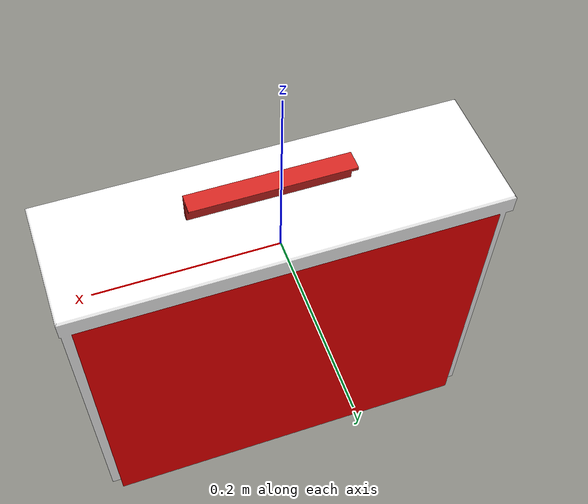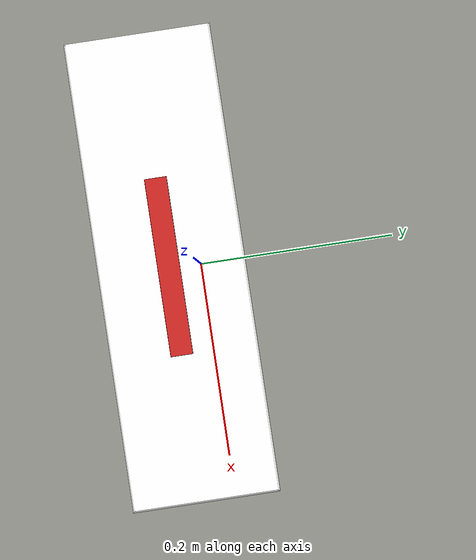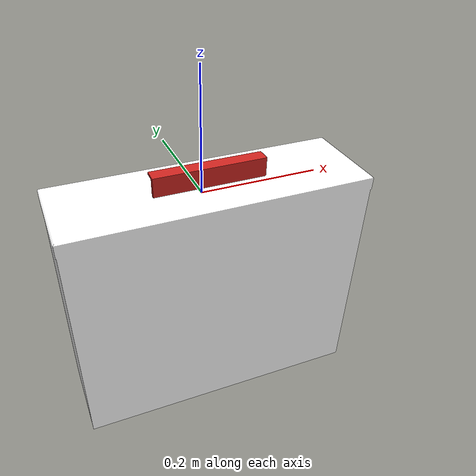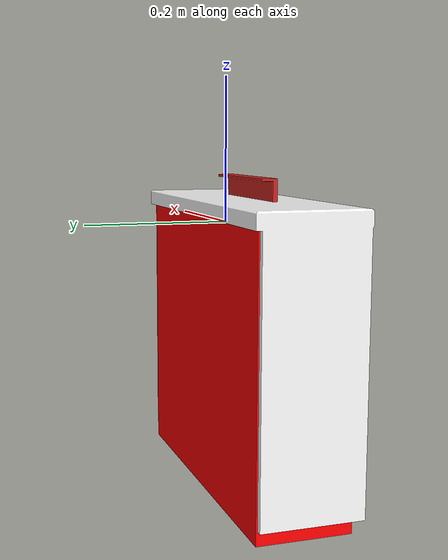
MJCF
<mujoco model="Drawer_feba4efa">
  <compiler autolimits="true" boundmass="0.01" angle="radian"/>
  <default>
    <default class="/">
      <default class="__VISUAL_MJT__">
        <geom contype="0" conaffinity="0" group="0"/>
      </default>
      <default class="__STRUCTURAL_MJT__">
        <geom contype="8" conaffinity="15" group="4" friction="0.90000000000000002 0.90000000000000002 0.001" solref="0.025000000000000001 1" solimp="0.998 0.998 0.001"/>
      </default>
      <default class="__DYNAMIC_MJT__">
        <geom contype="1" conaffinity="15" group="4" friction="0.90000000000000002 0.90000000000000002 0.001" solref="0.025000000000000001 1" solimp="0.998 0.998 0.001"/>
      </default>
    </default>
  </default>
  <asset>
    <material name="material_WhiteWoodClean" class="/" specular="0.5" shininess="0.5" rgba="1 1 1 1"/>
    <mesh name="Drawer_feba4efa_Mesh_01_637271c9" class="/" file="Drawer_feba4efa_Mesh_01_637271c9/Drawer_feba4efa_Mesh_01_637271c9.obj" scale="1 1 1" inertia="legacy"/>
    <texture name="HammeredMetal_AlbedoTransparency_2" type="2d" file="HammeredMetal_AlbedoTransparency.png"/>
    <material name="material_HammeredMetal_AlbedoTransparency_2" class="/" texture="HammeredMetal_AlbedoTransparency_2" specular="0.5" shininess="0.5" rgba="1 0.93407709999999999 0.81617649999999997 1"/>
    <mesh name="Drawer_feba4efa_handle_3_178mm_01_3ba614ac" class="/" file="Drawer_feba4efa_handle_3_178mm_01_3ba614ac/Drawer_feba4efa_handle_3_178mm_01_3ba614ac.obj" scale="1 1 1" inertia="legacy"/>
  </asset>
  <worldbody>
    <body name="Drawer_feba4efa">
      <body name="Drawer_feba4efa_Mesh_01_637271c9" pos="-0 -0.0038000047206878662 0.010999917984008789" quat="1 0 0 0">
        <geom name="Drawer_feba4efa_Mesh_01_637271c9" class="__VISUAL_MJT__" type="mesh" material="material_WhiteWoodClean" mesh="Drawer_feba4efa_Mesh_01_637271c9"/>
        <joint name="Drawer_feba4efa_joint" class="/" type="slide" pos="-0 0.0038000000640749931 -0.010999999940395355" axis="0 0 1" stiffness="0" range="0 0.35999999999999999" damping="0.10000000000000001" frictionloss="0"/>
        <site name="Drawer_feba4efa_Mesh_01_637271c9_Receptacle_0" class="/" type="box" rgba="1 0 0 1" size="0.22959119081497192 0.064363397657871246 0.19297271966934204" pos="-0.0012710094451904297 -0.020600229501724243 -0.19311165809631348" quat="0 1 0 0"/>
        <geom name="Drawer_feba4efa_Mesh_01_637271c9_PrimitiveCollider_0" class="__DYNAMIC_MJT__" type="box" size="0.23976141214370728 0.074873313307762146 0.011387884616851807" rgba="0 1 0 1" pos="-0 -0.020526021718978882 0.00040102005004882812" quat="0 1 0 0"/>
        <geom name="Drawer_feba4efa_Mesh_01_637271c9_PrimitiveCollider_1" class="__DYNAMIC_MJT__" type="box" size="0.23976141214370728 0.070320680737495422 0.007381439208984375" rgba="0 1 0 1" pos="-0 -0.024350196123123169 -0.37086224555969238" quat="0 1 0 0"/>
        <geom name="Drawer_feba4efa_Mesh_01_637271c9_PrimitiveCollider_2" class="__DYNAMIC_MJT__" type="box" size="0.19288793206214905 0.069621071219444275 0.0073814410716295242" rgba="0 1 0 1" pos="-0.2313377857208252 -0.023650616407394409 -0.18537354469299316" quat="0 0.70710678118654757 0 0.70710678118654757"/>
        <geom name="Drawer_feba4efa_Mesh_01_637271c9_PrimitiveCollider_3" class="__DYNAMIC_MJT__" type="box" size="0.19288802146911621 0.069621071219444275 0.0073814443312585354" rgba="0 1 0 1" pos="0.23086214065551758 -0.023650616407394409 -0.18537330627441406" quat="0 0.70710678118654757 0 0.70710678118654757"/>
        <geom name="Drawer_feba4efa_Mesh_01_637271c9_PrimitiveCollider_4" class="__DYNAMIC_MJT__" type="box" size="0.19288797676563263 0.23735302686691284 0.0050300620496273041" rgba="0 1 0 1" pos="-0.00072526931762695312 -0.089689135551452637 -0.18537330627441406" quat="-0.49999994039535345 0.49999999999999822 0.500000059604643 0.49999999999999822"/>
        <body name="Drawer_feba4efa_handle_3_178mm_01_3ba614ac" pos="-0 -0.034000013023614883 0.019999898970127106" quat="1 0 0 0">
          <geom name="Drawer_feba4efa_handle_3_178mm_01_3ba614ac" class="__VISUAL_MJT__" type="mesh" material="material_HammeredMetal_AlbedoTransparency_2" mesh="Drawer_feba4efa_handle_3_178mm_01_3ba614ac"/>
          <geom name="Drawer_feba4efa_handle_3_178mm_01_3ba614ac_PrimitiveCollider_0" class="__DYNAMIC_MJT__" type="box" size="0.088752083480358124 0.0035549115855246782 0.016431529074907303" rgba="0 1 0 1" pos="-0 0 0.016290187835693359" quat="0 1 0 0"/>
          <geom name="Drawer_feba4efa_handle_3_178mm_01_3ba614ac_PrimitiveCollider_1" class="__DYNAMIC_MJT__" type="box" size="0.088752083480358124 0.0077598136849701405 0.0019227256998419762" rgba="0 1 0 1" pos="-0 0.011284917593002319 0.030798912048339844" quat="0 1 0 0"/>
        </body>
      </body>
    </body>
  </worldbody>
  <contact>
    <exclude name="//unnamed_contact_0" body1="Drawer_feba4efa_Mesh_01_637271c9" body2="Drawer_feba4efa_handle_3_178mm_01_3ba614ac"/>
  </contact>
</mujoco>
